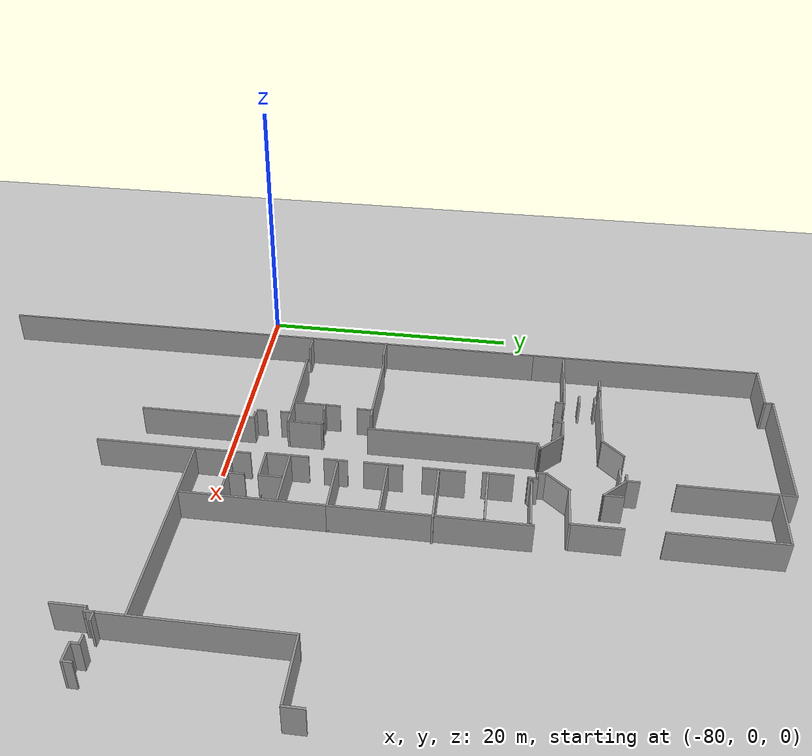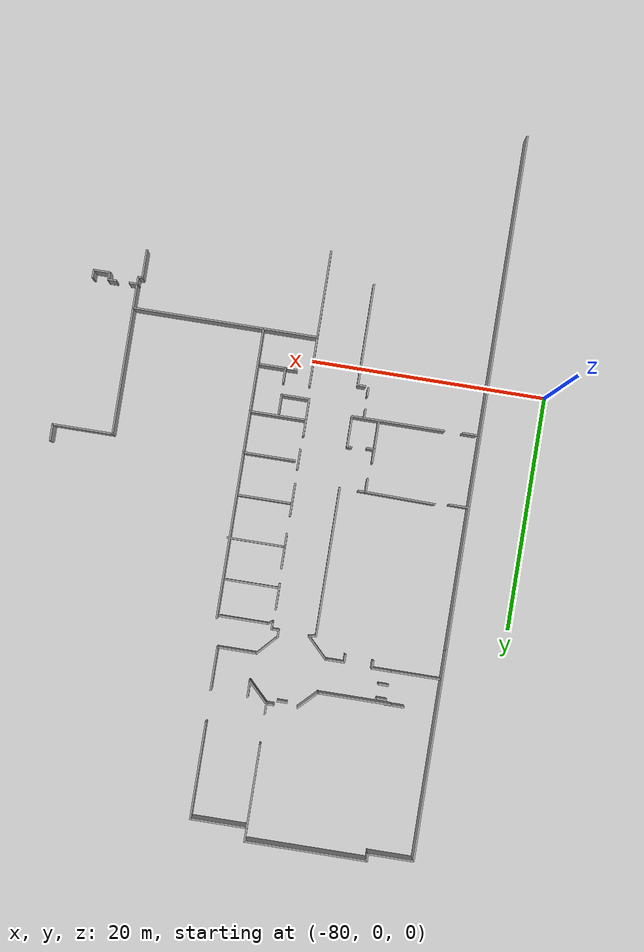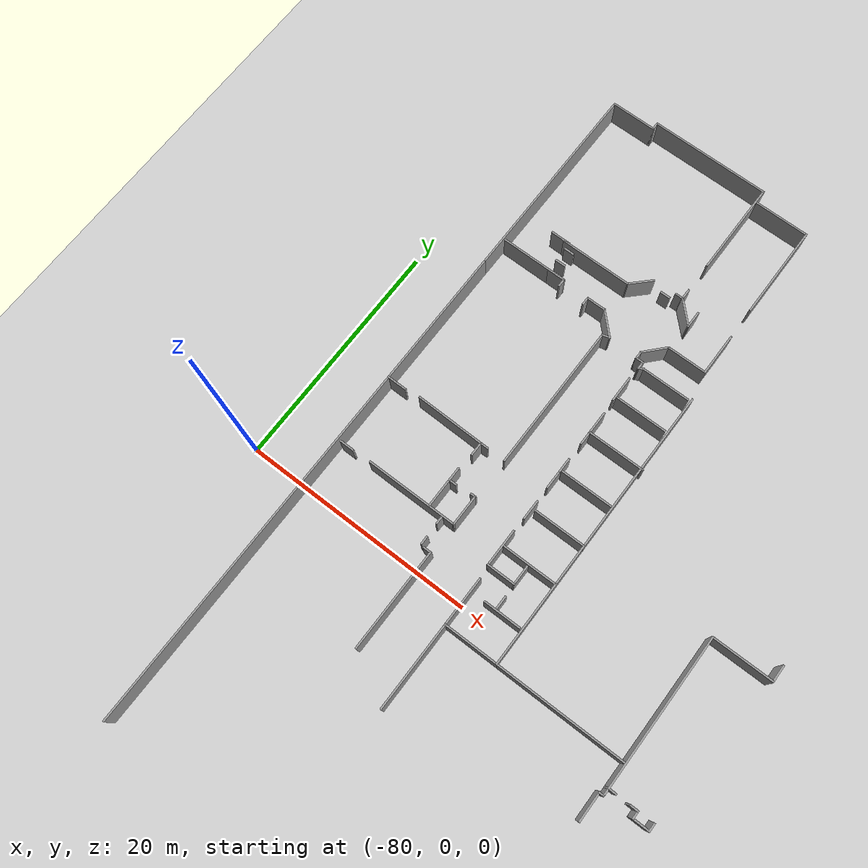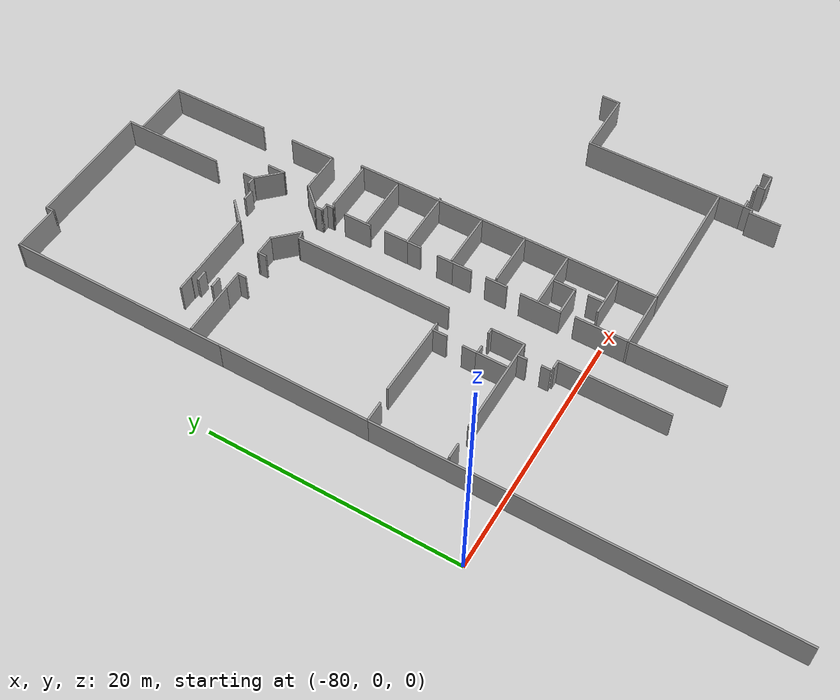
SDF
<sdf version="1.6">
 <world name="default">
  <model name="ground_plane">
   <static>1</static>
   <link name="link">
    <collision name="collision">
     <geometry><plane><normal>0 0 1</normal><size>200 100</size></plane></geometry>
     <surface><friction><ode><mu>100</mu><mu2>50</mu2></ode></friction></surface>
    </collision>
    <visual name="visual">
     <cast_shadows>0</cast_shadows>
     <geometry><plane><normal>0 0 1</normal><size>200 100</size></plane></geometry>
     <material>
      <script><uri>file://media/materials/scripts/gazebo.material</uri><name>Gazebo/Grey</name></script>
     </material>
    </visual>
   </link>
  </model>
  <model name="LuterFloorPlan">
   <pose>-8.27259 7.62647 0 0 -0 0</pose>
   <link name="Door_0">
    <collision name="Door_0_Collision">
     <geometry><box><size>0.9 0.17 2</size></box></geometry>
     <pose>0 0 1 0 -0 0</pose>
    </collision>
    <visual name="Door_0_Visual">
     <pose>0 0 1 0 -0 0</pose>
     <geometry><box><size>0.9 0.17 2</size></box></geometry>
     <material>
      <script><uri>file://media/materials/scripts/gazebo.material</uri><name>Gazebo/Grey</name></script>
     </material>
    </visual>
    <pose>-53.7198 21.2927 0 0 -0 0</pose>
   </link>
   <link name="Door_1">
    <collision name="Door_1_Collision">
     <geometry><box><size>0.9 0.17 2</size></box></geometry>
     <pose>0 0 1 0 -0 0</pose>
    </collision>
    <visual name="Door_1_Visual">
     <pose>0 0 1 0 -0 0</pose>
     <geometry><box><size>0.9 0.17 2</size></box></geometry>
     <material>
      <script><uri>file://media/materials/scripts/gazebo.material</uri><name>Gazebo/Grey</name></script>
     </material>
    </visual>
    <pose>-61.9486 19.7632 0 0 -0 0</pose>
   </link>
   <link name="Door_2">
    <collision name="Door_2_Collision">
     <geometry><box><size>0.9 0.17 2</size></box></geometry>
     <pose>0 0 1 0 -0 0</pose>
    </collision>
    <visual name="Door_2_Visual">
     <pose>0 0 1 0 -0 0</pose>
     <geometry><box><size>0.9 0.17 2</size></box></geometry>
     <material>
      <script><uri>file://media/materials/scripts/gazebo.material</uri><name>Gazebo/Grey</name></script>
     </material>
    </visual>
    <pose>-61.918 18.5396 0 0 -0 0</pose>
   </link>
   <link name="Wall_10">
    <collision name="Wall_10_Collision">
     <geometry><box><size>2.25 0.15 2.5</size></box></geometry>
     <pose>0 0 1.25 0 -0 0</pose>
    </collision>
    <visual name="Wall_10_Visual">
     <pose>0 0 1.25 0 -0 0</pose>
     <geometry><box><size>2.25 0.15 2.5</size></box></geometry>
     <material>
      <script><uri>file://media/materials/scripts/gazebo.material</uri><name>Gazebo/Grey</name></script>
      <ambient>1 1 1 1</ambient>
     </material>
    </visual>
    <pose>-55.8278 20.7995 0 0 0 -2.35619</pose>
   </link>
   <link name="Wall_101">
    <collision name="Wall_101_Collision">
     <geometry><box><size>3.25 0.15 2.5</size></box></geometry>
     <pose>0 0 1.25 0 -0 0</pose>
    </collision>
    <visual name="Wall_101_Visual">
     <pose>0 0 1.25 0 -0 0</pose>
     <geometry><box><size>3.25 0.15 2.5</size></box></geometry>
     <material>
      <script><uri>file://media/materials/scripts/gazebo.material</uri><name>Gazebo/Grey</name></script>
      <ambient>1 1 1 1</ambient>
     </material>
    </visual>
    <pose>-48.9481 -6.49816 0 0 -0 0</pose>
   </link>
   <link name="Wall_103">
    <collision name="Wall_103_Collision">
     <geometry><box><size>1.25 0.15 2.5</size></box></geometry>
     <pose>0 0 1.25 0 -0 0</pose>
    </collision>
    <visual name="Wall_103_Visual">
     <pose>0 0 1.25 0 -0 0</pose>
     <geometry><box><size>1.25 0.15 2.5</size></box></geometry>
     <material>
      <script><uri>file://media/materials/scripts/gazebo.material</uri><name>Gazebo/Grey</name></script>
      <ambient>1 1 1 1</ambient>
     </material>
    </visual>
    <pose>-49.5326 -5.88782 0 0 -0 1.5708</pose>
   </link>
   <link name="Wall_105">
    <collision name="Wall_105_Collision">
     <geometry><box><size>2.5 0.15 2.5</size></box></geometry>
     <pose>0 0 1.25 0 -0 0</pose>
    </collision>
    <visual name="Wall_105_Visual">
     <pose>0 0 1.25 0 -0 0</pose>
     <geometry><box><size>2.5 0.15 2.5</size></box></geometry>
     <material>
      <script><uri>file://media/materials/scripts/gazebo.material</uri><name>Gazebo/Grey</name></script>
      <ambient>1 1 1 1</ambient>
     </material>
    </visual>
    <pose>-50.7511 -4.22783 0 0 -0 0</pose>
   </link>
   <link name="Wall_106">
    <collision name="Wall_106_Collision">
     <geometry><box><size>1.75 0.15 2.5</size></box></geometry>
     <pose>0 0 1.25 0 -0 0</pose>
    </collision>
    <visual name="Wall_106_Visual">
     <pose>0 0 1.25 0 -0 0</pose>
     <geometry><box><size>1.75 0.15 2.5</size></box></geometry>
     <material>
      <script><uri>file://media/materials/scripts/gazebo.material</uri><name>Gazebo/Grey</name></script>
      <ambient>1 1 1 1</ambient>
     </material>
    </visual>
    <pose>-49.5761 -3.42783 0 0 -0 1.5708</pose>
   </link>
   <link name="Wall_109">
    <collision name="Wall_109_Collision">
     <geometry><box><size>32 0.15 2.5</size></box></geometry>
     <pose>0 0 1.25 0 -0 0</pose>
    </collision>
    <visual name="Wall_109_Visual">
     <pose>0 0 1.25 0 -0 0</pose>
     <geometry><box><size>32 0.15 2.5</size></box></geometry>
     <material>
      <script><uri>file://media/materials/scripts/gazebo.material</uri><name>Gazebo/Grey</name></script>
      <ambient>1 1 1 1</ambient>
     </material>
    </visual>
    <pose>-66.6595 -13.2333 0 0 0 -1.5708</pose>
   </link>
   <link name="Wall_11">
    <collision name="Wall_11_Collision">
     <geometry><box><size>6.25 0.15 2.5</size></box></geometry>
     <pose>0 0 1.25 0 -0 0</pose>
    </collision>
    <visual name="Wall_11_Visual">
     <pose>0 0 1.25 0 -0 0</pose>
     <geometry><box><size>6.25 0.15 2.5</size></box></geometry>
     <material>
      <script><uri>file://media/materials/scripts/gazebo.material</uri><name>Gazebo/Grey</name></script>
      <ambient>1 1 1 1</ambient>
     </material>
    </visual>
    <pose>-59.6203 20.057 0 0 -0 3.14159</pose>
   </link>
   <link name="Wall_116">
    <collision name="Wall_116_Collision">
     <geometry><box><size>1.25 0.15 2.5</size></box></geometry>
     <pose>0 0 1.25 0 -0 0</pose>
    </collision>
    <visual name="Wall_116_Visual">
     <pose>0 0 1.25 0 -0 0</pose>
     <geometry><box><size>1.25 0.15 2.5</size></box></geometry>
     <material>
      <script><uri>file://media/materials/scripts/gazebo.material</uri><name>Gazebo/Grey</name></script>
      <ambient>1 1 1 1</ambient>
     </material>
    </visual>
    <pose>-65.7745 -3.44723 0 0 -0 0</pose>
   </link>
   <link name="Wall_118">
    <collision name="Wall_118_Collision">
     <geometry><box><size>8 0.15 2.5</size></box></geometry>
     <pose>0 0 1.25 0 -0 0</pose>
    </collision>
    <visual name="Wall_118_Visual">
     <pose>0 0 1.25 0 -0 0</pose>
     <geometry><box><size>8 0.15 2.5</size></box></geometry>
     <material>
      <script><uri>file://media/materials/scripts/gazebo.material</uri><name>Gazebo/Grey</name></script>
      <ambient>1 1 1 1</ambient>
     </material>
    </visual>
    <pose>-59.6555 -3.37687 0 0 -0 0</pose>
   </link>
   <link name="Wall_119">
    <collision name="Wall_119_Collision">
     <geometry><box><size>2.75 0.15 2.5</size></box></geometry>
     <pose>0 0 1.25 0 -0 0</pose>
    </collision>
    <visual name="Wall_119_Visual">
     <pose>0 0 1.25 0 -0 0</pose>
     <geometry><box><size>2.75 0.15 2.5</size></box></geometry>
     <material>
      <script><uri>file://media/materials/scripts/gazebo.material</uri><name>Gazebo/Grey</name></script>
      <ambient>1 1 1 1</ambient>
     </material>
    </visual>
    <pose>-55.7306 -2.07687 0 0 -0 1.5708</pose>
   </link>
   <link name="Wall_120">
    <collision name="Wall_120_Collision">
     <geometry><box><size>0.5 0.15 2.5</size></box></geometry>
     <pose>0 0 1.25 0 -0 0</pose>
    </collision>
    <visual name="Wall_120_Visual">
     <pose>0 0 1.25 0 -0 0</pose>
     <geometry><box><size>0.5 0.15 2.5</size></box></geometry>
     <material>
      <script><uri>file://media/materials/scripts/gazebo.material</uri><name>Gazebo/Grey</name></script>
      <ambient>1 1 1 1</ambient>
     </material>
    </visual>
    <pose>-55.9055 -0.776871 0 0 -0 3.14159</pose>
   </link>
   <link name="Wall_122">
    <collision name="Wall_122_Collision">
     <geometry><box><size>0.75 0.15 2.5</size></box></geometry>
     <pose>0 0 1.25 0 -0 0</pose>
    </collision>
    <visual name="Wall_122_Visual">
     <pose>0 0 1.25 0 -0 0</pose>
     <geometry><box><size>0.75 0.15 2.5</size></box></geometry>
     <material>
      <script><uri>file://media/materials/scripts/gazebo.material</uri><name>Gazebo/Grey</name></script>
      <ambient>1 1 1 1</ambient>
     </material>
    </visual>
    <pose>-57.7243 -0.914357 0 0 -0 3.14159</pose>
   </link>
   <link name="Wall_123">
    <collision name="Wall_123_Collision">
     <geometry><box><size>2.5 0.15 2.5</size></box></geometry>
     <pose>0 0 1.25 0 -0 0</pose>
    </collision>
    <visual name="Wall_123_Visual">
     <pose>0 0 1.25 0 -0 0</pose>
     <geometry><box><size>2.5 0.15 2.5</size></box></geometry>
     <material>
      <script><uri>file://media/materials/scripts/gazebo.material</uri><name>Gazebo/Grey</name></script>
      <ambient>1 1 1 1</ambient>
     </material>
    </visual>
    <pose>-58.0243 -2.08936 0 0 0 -1.5708</pose>
   </link>
   <link name="Wall_125">
    <collision name="Wall_125_Collision">
     <geometry><box><size>1.25 0.15 2.5</size></box></geometry>
     <pose>0 0 1.25 0 -0 0</pose>
    </collision>
    <visual name="Wall_125_Visual">
     <pose>0 0 1.25 0 -0 0</pose>
     <geometry><box><size>1.25 0.15 2.5</size></box></geometry>
     <material>
      <script><uri>file://media/materials/scripts/gazebo.material</uri><name>Gazebo/Grey</name></script>
      <ambient>1 1 1 1</ambient>
     </material>
    </visual>
    <pose>-58.0243 -0.364357 0 0 -0 1.5708</pose>
   </link>
   <link name="Wall_127">
    <collision name="Wall_127_Collision">
     <geometry><box><size>0.75 0.15 2.5</size></box></geometry>
     <pose>0 0 1.25 0 -0 0</pose>
    </collision>
    <visual name="Wall_127_Visual">
     <pose>0 0 1.25 0 -0 0</pose>
     <geometry><box><size>0.75 0.15 2.5</size></box></geometry>
     <material>
      <script><uri>file://media/materials/scripts/gazebo.material</uri><name>Gazebo/Grey</name></script>
      <ambient>1 1 1 1</ambient>
     </material>
    </visual>
    <pose>-56.7559 -3.78241 0 0 0 -1.5708</pose>
   </link>
   <link name="Wall_129">
    <collision name="Wall_129_Collision">
     <geometry><box><size>0.75 0.15 2.5</size></box></geometry>
     <pose>0 0 1.25 0 -0 0</pose>
    </collision>
    <visual name="Wall_129_Visual">
     <pose>0 0 1.25 0 -0 0</pose>
     <geometry><box><size>0.75 0.15 2.5</size></box></geometry>
     <material>
      <script><uri>file://media/materials/scripts/gazebo.material</uri><name>Gazebo/Grey</name></script>
      <ambient>1 1 1 1</ambient>
     </material>
    </visual>
    <pose>-56.7207 -5.6117 0 0 0 -1.5708</pose>
   </link>
   <link name="Wall_13">
    <collision name="Wall_13_Collision">
     <geometry><box><size>1.75 0.15 2.5</size></box></geometry>
     <pose>0 0 1.25 0 -0 0</pose>
    </collision>
    <visual name="Wall_13_Visual">
     <pose>0 0 1.25 0 -0 0</pose>
     <geometry><box><size>1.75 0.15 2.5</size></box></geometry>
     <material>
      <script><uri>file://media/materials/scripts/gazebo.material</uri><name>Gazebo/Grey</name></script>
      <ambient>1 1 1 1</ambient>
     </material>
    </visual>
    <pose>-61.5273 17.3106 0 0 -0 0</pose>
   </link>
   <link name="Wall_131">
    <collision name="Wall_131_Collision">
     <geometry><box><size>0.75 0.15 2.5</size></box></geometry>
     <pose>0 0 1.25 0 -0 0</pose>
    </collision>
    <visual name="Wall_131_Visual">
     <pose>0 0 1.25 0 -0 0</pose>
     <geometry><box><size>0.75 0.15 2.5</size></box></geometry>
     <material>
      <script><uri>file://media/materials/scripts/gazebo.material</uri><name>Gazebo/Grey</name></script>
      <ambient>1 1 1 1</ambient>
     </material>
    </visual>
    <pose>-56.1041 -6.05046 0 0 -0 0</pose>
   </link>
   <link name="Wall_132">
    <collision name="Wall_132_Collision">
     <geometry><box><size>8.75 0.15 2.5</size></box></geometry>
     <pose>0 0 1.25 0 -0 0</pose>
    </collision>
    <visual name="Wall_132_Visual">
     <pose>0 0 1.25 0 -0 0</pose>
     <geometry><box><size>8.75 0.15 2.5</size></box></geometry>
     <material>
      <script><uri>file://media/materials/scripts/gazebo.material</uri><name>Gazebo/Grey</name></script>
      <ambient>1 1 1 1</ambient>
     </material>
    </visual>
    <pose>-55.8041 -10.3505 0 0 0 -1.5708</pose>
   </link>
   <link name="Wall_14">
    <collision name="Wall_14_Collision">
     <geometry><box><size>0.75 0.15 2.5</size></box></geometry>
     <pose>0 0 1.25 0 -0 0</pose>
    </collision>
    <visual name="Wall_14_Visual">
     <pose>0 0 1.25 0 -0 0</pose>
     <geometry><box><size>0.75 0.15 2.5</size></box></geometry>
     <material>
      <script><uri>file://media/materials/scripts/gazebo.material</uri><name>Gazebo/Grey</name></script>
      <ambient>1 1 1 1</ambient>
     </material>
    </visual>
    <pose>-60.7273 17.0106 0 0 0 -1.5708</pose>
   </link>
   <link name="Wall_147">
    <collision name="Wall_147_Collision">
     <geometry><box><size>7.5 0.15 2.5</size></box></geometry>
     <pose>0 0 1.25 0 -0 0</pose>
    </collision>
    <visual name="Wall_147_Visual">
     <pose>0 0 1.25 0 -0 0</pose>
     <geometry><box><size>7.5 0.15 2.5</size></box></geometry>
     <material>
      <script><uri>file://media/materials/scripts/gazebo.material</uri><name>Gazebo/Grey</name></script>
      <ambient>1 1 1 1</ambient>
     </material>
    </visual>
    <pose>-51.7739 -13.1903 0 0 0 -1.5708</pose>
   </link>
   <link name="Wall_16">
    <collision name="Wall_16_Collision">
     <geometry><box><size>0.75 0.15 2.5</size></box></geometry>
     <pose>0 0 1.25 0 -0 0</pose>
    </collision>
    <visual name="Wall_16_Visual">
     <pose>0 0 1.25 0 -0 0</pose>
     <geometry><box><size>0.75 0.15 2.5</size></box></geometry>
     <material>
      <script><uri>file://media/materials/scripts/gazebo.material</uri><name>Gazebo/Grey</name></script>
      <ambient>1 1 1 1</ambient>
     </material>
    </visual>
    <pose>-58.3402 16.8783 0 0 -0 1.5708</pose>
   </link>
   <link name="Wall_17">
    <collision name="Wall_17_Collision">
     <geometry><box><size>1.75 0.15 2.5</size></box></geometry>
     <pose>0 0 1.25 0 -0 0</pose>
    </collision>
    <visual name="Wall_17_Visual">
     <pose>0 0 1.25 0 -0 0</pose>
     <geometry><box><size>1.75 0.15 2.5</size></box></geometry>
     <material>
      <script><uri>file://media/materials/scripts/gazebo.material</uri><name>Gazebo/Grey</name></script>
      <ambient>1 1 1 1</ambient>
     </material>
    </visual>
    <pose>-57.5402 17.1783 0 0 -0 0</pose>
   </link>
   <link name="Wall_18">
    <collision name="Wall_18_Collision">
     <geometry><box><size>2.5 0.15 2.5</size></box></geometry>
     <pose>0 0 1.25 0 -0 0</pose>
    </collision>
    <visual name="Wall_18_Visual">
     <pose>0 0 1.25 0 -0 0</pose>
     <geometry><box><size>2.5 0.15 2.5</size></box></geometry>
     <material>
      <script><uri>file://media/materials/scripts/gazebo.material</uri><name>Gazebo/Grey</name></script>
      <ambient>1 1 1 1</ambient>
     </material>
    </visual>
    <pose>-55.9093 16.3475 0 0 0 -0.785398</pose>
   </link>
   <link name="Wall_20">
    <collision name="Wall_20_Collision">
     <geometry><box><size>0.75 0.15 2.5</size></box></geometry>
     <pose>0 0 1.25 0 -0 0</pose>
    </collision>
    <visual name="Wall_20_Visual">
     <pose>0 0 1.25 0 -0 0</pose>
     <geometry><box><size>0.75 0.15 2.5</size></box></geometry>
     <material>
      <script><uri>file://media/materials/scripts/gazebo.material</uri><name>Gazebo/Grey</name></script>
      <ambient>1 1 1 1</ambient>
     </material>
    </visual>
    <pose>-55.3683 15.439 0 0 0 -2.87979</pose>
   </link>
   <link name="Wall_21">
    <collision name="Wall_21_Collision">
     <geometry><box><size>12.75 0.15 2.5</size></box></geometry>
     <pose>0 0 1.25 0 -0 0</pose>
    </collision>
    <visual name="Wall_21_Visual">
     <pose>0 0 1.25 0 -0 0</pose>
     <geometry><box><size>12.75 0.15 2.5</size></box></geometry>
     <material>
      <script><uri>file://media/materials/scripts/gazebo.material</uri><name>Gazebo/Grey</name></script>
      <ambient>1 1 1 1</ambient>
     </material>
    </visual>
    <pose>-55.658 9.06132 0 0 0 -1.5708</pose>
   </link>
   <link name="Wall_266">
    <collision name="Wall_266_Collision">
     <geometry><box><size>2.5 0.15 2.5</size></box></geometry>
     <pose>0 0 1.25 0 -0 0</pose>
    </collision>
    <visual name="Wall_266_Visual">
     <pose>0 0 1.25 0 -0 0</pose>
     <geometry><box><size>2.5 0.15 2.5</size></box></geometry>
     <material>
      <script><uri>file://media/materials/scripts/gazebo.material</uri><name>Gazebo/Grey</name></script>
      <ambient>1 1 1 1</ambient>
     </material>
    </visual>
    <pose>-36.3805 -13.3338 0 0 -0 1.5708</pose>
   </link>
   <link name="Wall_267">
    <collision name="Wall_267_Collision">
     <geometry><box><size>0.5 0.15 2.5</size></box></geometry>
     <pose>0 0 1.25 0 -0 0</pose>
    </collision>
    <visual name="Wall_267_Visual">
     <pose>0 0 1.25 0 -0 0</pose>
     <geometry><box><size>0.5 0.15 2.5</size></box></geometry>
     <material>
      <script><uri>file://media/materials/scripts/gazebo.material</uri><name>Gazebo/Grey</name></script>
      <ambient>1 1 1 1</ambient>
     </material>
    </visual>
    <pose>-36.2055 -12.1588 0 0 -0 0</pose>
   </link>
   <link name="Wall_268">
    <collision name="Wall_268_Collision">
     <geometry><box><size>0.75 0.15 2.5</size></box></geometry>
     <pose>0 0 1.25 0 -0 0</pose>
    </collision>
    <visual name="Wall_268_Visual">
     <pose>0 0 1.25 0 -0 0</pose>
     <geometry><box><size>0.75 0.15 2.5</size></box></geometry>
     <material>
      <script><uri>file://media/materials/scripts/gazebo.material</uri><name>Gazebo/Grey</name></script>
      <ambient>1 1 1 1</ambient>
     </material>
    </visual>
    <pose>-36.0305 -11.8588 0 0 -0 1.5708</pose>
   </link>
   <link name="Wall_269">
    <collision name="Wall_269_Collision">
     <geometry><box><size>0.75 0.15 2.5</size></box></geometry>
     <pose>0 0 1.25 0 -0 0</pose>
    </collision>
    <visual name="Wall_269_Visual">
     <pose>0 0 1.25 0 -0 0</pose>
     <geometry><box><size>0.75 0.15 2.5</size></box></geometry>
     <material>
      <script><uri>file://media/materials/scripts/gazebo.material</uri><name>Gazebo/Grey</name></script>
      <ambient>1 1 1 1</ambient>
     </material>
    </visual>
    <pose>-35.7305 -11.5588 0 0 -0 0</pose>
   </link>
   <link name="Wall_273">
    <collision name="Wall_273_Collision">
     <geometry><box><size>13 0.15 2.5</size></box></geometry>
     <pose>0 0 1.25 0 -0 0</pose>
    </collision>
    <visual name="Wall_273_Visual">
     <pose>0 0 1.25 0 -0 0</pose>
     <geometry><box><size>13 0.15 2.5</size></box></geometry>
     <material>
      <script><uri>file://media/materials/scripts/gazebo.material</uri><name>Gazebo/Grey</name></script>
      <ambient>1 1 1 1</ambient>
     </material>
    </visual>
    <pose>-36.0305 -5.13381 0 0 -0 1.5708</pose>
   </link>
   <link name="Wall_274">
    <collision name="Wall_274_Collision">
     <geometry><box><size>5.25 0.15 2.5</size></box></geometry>
     <pose>0 0 1.25 0 -0 0</pose>
    </collision>
    <visual name="Wall_274_Visual">
     <pose>0 0 1.25 0 -0 0</pose>
     <geometry><box><size>5.25 0.15 2.5</size></box></geometry>
     <material>
      <script><uri>file://media/materials/scripts/gazebo.material</uri><name>Gazebo/Grey</name></script>
      <ambient>1 1 1 1</ambient>
     </material>
    </visual>
    <pose>-33.4805 1.29119 0 0 -0 0</pose>
   </link>
   <link name="Wall_275">
    <collision name="Wall_275_Collision">
     <geometry><box><size>1.5 0.15 2.5</size></box></geometry>
     <pose>0 0 1.25 0 -0 0</pose>
    </collision>
    <visual name="Wall_275_Visual">
     <pose>0 0 1.25 0 -0 0</pose>
     <geometry><box><size>1.5 0.15 2.5</size></box></geometry>
     <material>
      <script><uri>file://media/materials/scripts/gazebo.material</uri><name>Gazebo/Grey</name></script>
      <ambient>1 1 1 1</ambient>
     </material>
    </visual>
    <pose>-30.9305 1.96619 0 0 -0 1.5708</pose>
   </link>
   <link name="Wall_282">
    <collision name="Wall_282_Collision">
     <geometry><box><size>0.75 0.15 2.5</size></box></geometry>
     <pose>0 0 1.25 0 -0 0</pose>
    </collision>
    <visual name="Wall_282_Visual">
     <pose>0 0 1.25 0 -0 0</pose>
     <geometry><box><size>0.75 0.15 2.5</size></box></geometry>
     <material>
      <script><uri>file://media/materials/scripts/gazebo.material</uri><name>Gazebo/Grey</name></script>
      <ambient>1 1 1 1</ambient>
     </material>
    </visual>
    <pose>-33.8866 -11.5558 0 0 -0 0</pose>
   </link>
   <link name="Wall_283">
    <collision name="Wall_283_Collision">
     <geometry><box><size>0.75 0.15 2.5</size></box></geometry>
     <pose>0 0 1.25 0 -0 0</pose>
    </collision>
    <visual name="Wall_283_Visual">
     <pose>0 0 1.25 0 -0 0</pose>
     <geometry><box><size>0.75 0.15 2.5</size></box></geometry>
     <material>
      <script><uri>file://media/materials/scripts/gazebo.material</uri><name>Gazebo/Grey</name></script>
      <ambient>1 1 1 1</ambient>
     </material>
    </visual>
    <pose>-33.5866 -11.8558 0 0 0 -1.5708</pose>
   </link>
   <link name="Wall_284">
    <collision name="Wall_284_Collision">
     <geometry><box><size>1.5 0.15 2.5</size></box></geometry>
     <pose>0 0 1.25 0 -0 0</pose>
    </collision>
    <visual name="Wall_284_Visual">
     <pose>0 0 1.25 0 -0 0</pose>
     <geometry><box><size>1.5 0.15 2.5</size></box></geometry>
     <material>
      <script><uri>file://media/materials/scripts/gazebo.material</uri><name>Gazebo/Grey</name></script>
      <ambient>1 1 1 1</ambient>
     </material>
    </visual>
    <pose>-32.9116 -12.1558 0 0 -0 0</pose>
   </link>
   <link name="Wall_285">
    <collision name="Wall_285_Collision">
     <geometry><box><size>0.75 0.15 2.5</size></box></geometry>
     <pose>0 0 1.25 0 -0 0</pose>
    </collision>
    <visual name="Wall_285_Visual">
     <pose>0 0 1.25 0 -0 0</pose>
     <geometry><box><size>0.75 0.15 2.5</size></box></geometry>
     <material>
      <script><uri>file://media/materials/scripts/gazebo.material</uri><name>Gazebo/Grey</name></script>
      <ambient>1 1 1 1</ambient>
     </material>
    </visual>
    <pose>-32.2366 -11.8558 0 0 -0 1.5708</pose>
   </link>
   <link name="Wall_29">
    <collision name="Wall_29_Collision">
     <geometry><box><size>0.75 0.15 2.5</size></box></geometry>
     <pose>0 0 1.25 0 -0 0</pose>
    </collision>
    <visual name="Wall_29_Visual">
     <pose>0 0 1.25 0 -0 0</pose>
     <geometry><box><size>0.75 0.15 2.5</size></box></geometry>
     <material>
      <script><uri>file://media/materials/scripts/gazebo.material</uri><name>Gazebo/Grey</name></script>
      <ambient>1 1 1 1</ambient>
     </material>
    </visual>
    <pose>-57.5683 2.755 0 0 -0 3.14159</pose>
   </link>
   <link name="Wall_30">
    <collision name="Wall_30_Collision">
     <geometry><box><size>1.25 0.15 2.5</size></box></geometry>
     <pose>0 0 1.25 0 -0 0</pose>
    </collision>
    <visual name="Wall_30_Visual">
     <pose>0 0 1.25 0 -0 0</pose>
     <geometry><box><size>1.25 0.15 2.5</size></box></geometry>
     <material>
      <script><uri>file://media/materials/scripts/gazebo.material</uri><name>Gazebo/Grey</name></script>
      <ambient>1 1 1 1</ambient>
     </material>
    </visual>
    <pose>-57.8683 2.205 0 0 0 -1.5708</pose>
   </link>
   <link name="Wall_32">
    <collision name="Wall_32_Collision">
     <geometry><box><size>18 0.15 2.5</size></box></geometry>
     <pose>0 0 1.25 0 -0 0</pose>
    </collision>
    <visual name="Wall_32_Visual">
     <pose>0 0 1.25 0 -0 0</pose>
     <geometry><box><size>18 0.15 2.5</size></box></geometry>
     <material>
      <script><uri>file://media/materials/scripts/gazebo.material</uri><name>Gazebo/Grey</name></script>
      <ambient>1 1 1 1</ambient>
     </material>
    </visual>
    <pose>-66.6595 23.7167 0 0 0 -1.5708</pose>
   </link>
   <link name="Wall_34">
    <collision name="Wall_34_Collision">
     <geometry><box><size>1.75 0.15 2.5</size></box></geometry>
     <pose>0 0 1.25 0 -0 0</pose>
    </collision>
    <visual name="Wall_34_Visual">
     <pose>0 0 1.25 0 -0 0</pose>
     <geometry><box><size>1.75 0.15 2.5</size></box></geometry>
     <material>
      <script><uri>file://media/materials/scripts/gazebo.material</uri><name>Gazebo/Grey</name></script>
      <ambient>1 1 1 1</ambient>
     </material>
    </visual>
    <pose>-63.0452 20.0997 0 0 -0 0</pose>
   </link>
   <link name="Wall_36">
    <collision name="Wall_36_Collision">
     <geometry><box><size>4.25 0.15 2.5</size></box></geometry>
     <pose>0 0 1.25 0 -0 0</pose>
    </collision>
    <visual name="Wall_36_Visual">
     <pose>0 0 1.25 0 -0 0</pose>
     <geometry><box><size>4.25 0.15 2.5</size></box></geometry>
     <material>
      <script><uri>file://media/materials/scripts/gazebo.material</uri><name>Gazebo/Grey</name></script>
      <ambient>1 1 1 1</ambient>
     </material>
    </visual>
    <pose>-64.3773 17.3106 0 0 -0 3.14159</pose>
   </link>
   <link name="Wall_38">
    <collision name="Wall_38_Collision">
     <geometry><box><size>4 0.15 2.5</size></box></geometry>
     <pose>0 0 1.25 0 -0 0</pose>
    </collision>
    <visual name="Wall_38_Visual">
     <pose>0 0 1.25 0 -0 0</pose>
     <geometry><box><size>4 0.15 2.5</size></box></geometry>
     <material>
      <script><uri>file://media/materials/scripts/gazebo.material</uri><name>Gazebo/Grey</name></script>
      <ambient>1 1 1 1</ambient>
     </material>
    </visual>
    <pose>-64.7345 32.6417 0 0 -0 0</pose>
   </link>
   <link name="Wall_39">
    <collision name="Wall_39_Collision">
     <geometry><box><size>0.75 0.15 2.5</size></box></geometry>
     <pose>0 0 1.25 0 -0 0</pose>
    </collision>
    <visual name="Wall_39_Visual">
     <pose>0 0 1.25 0 -0 0</pose>
     <geometry><box><size>0.75 0.15 2.5</size></box></geometry>
     <material>
      <script><uri>file://media/materials/scripts/gazebo.material</uri><name>Gazebo/Grey</name></script>
      <ambient>1 1 1 1</ambient>
     </material>
    </visual>
    <pose>-62.8095 32.9417 0 0 -0 1.5708</pose>
   </link>
   <link name="Wall_40">
    <collision name="Wall_40_Collision">
     <geometry><box><size>10.5 0.15 2.5</size></box></geometry>
     <pose>0 0 1.25 0 -0 0</pose>
    </collision>
    <visual name="Wall_40_Visual">
     <pose>0 0 1.25 0 -0 0</pose>
     <geometry><box><size>10.5 0.15 2.5</size></box></geometry>
     <material>
      <script><uri>file://media/materials/scripts/gazebo.material</uri><name>Gazebo/Grey</name></script>
      <ambient>1 1 1 1</ambient>
     </material>
    </visual>
    <pose>-57.6345 33.2417 0 0 -0 0</pose>
   </link>
   <link name="Wall_41">
    <collision name="Wall_41_Collision">
     <geometry><box><size>8.25 0.15 2.5</size></box></geometry>
     <pose>0 0 1.25 0 -0 0</pose>
    </collision>
    <visual name="Wall_41_Visual">
     <pose>0 0 1.25 0 -0 0</pose>
     <geometry><box><size>8.25 0.15 2.5</size></box></geometry>
     <material>
      <script><uri>file://media/materials/scripts/gazebo.material</uri><name>Gazebo/Grey</name></script>
      <ambient>1 1 1 1</ambient>
     </material>
    </visual>
    <pose>-52.4595 29.1917 0 0 0 -1.5708</pose>
   </link>
   <link name="Wall_43">
    <collision name="Wall_43_Collision">
     <geometry><box><size>1 0.15 2.5</size></box></geometry>
     <pose>0 0 1.25 0 -0 0</pose>
    </collision>
    <visual name="Wall_43_Visual">
     <pose>0 0 1.25 0 -0 0</pose>
     <geometry><box><size>1 0.15 2.5</size></box></geometry>
     <material>
      <script><uri>file://media/materials/scripts/gazebo.material</uri><name>Gazebo/Grey</name></script>
      <ambient>1 1 1 1</ambient>
     </material>
    </visual>
    <pose>-52.435 22.0607 0 0 0 -1.5708</pose>
   </link>
   <link name="Wall_44">
    <collision name="Wall_44_Collision">
     <geometry><box><size>0.75 0.15 2.5</size></box></geometry>
     <pose>0 0 1.25 0 -0 0</pose>
    </collision>
    <visual name="Wall_44_Visual">
     <pose>0 0 1.25 0 -0 0</pose>
     <geometry><box><size>0.75 0.15 2.5</size></box></geometry>
     <material>
      <script><uri>file://media/materials/scripts/gazebo.material</uri><name>Gazebo/Grey</name></script>
      <ambient>1 1 1 1</ambient>
     </material>
    </visual>
    <pose>-52.735 21.6357 0 0 -0 3.14159</pose>
   </link>
   <link name="Wall_46">
    <collision name="Wall_46_Collision">
     <geometry><box><size>4.75 0.15 2.5</size></box></geometry>
     <pose>0 0 1.25 0 -0 0</pose>
    </collision>
    <visual name="Wall_46_Visual">
     <pose>0 0 1.25 0 -0 0</pose>
     <geometry><box><size>4.75 0.15 2.5</size></box></geometry>
     <material>
      <script><uri>file://media/materials/scripts/gazebo.material</uri><name>Gazebo/Grey</name></script>
      <ambient>1 1 1 1</ambient>
     </material>
    </visual>
    <pose>-49.9791 32.1083 0 0 -0 0</pose>
   </link>
   <link name="Wall_47">
    <collision name="Wall_47_Collision">
     <geometry><box><size>8.25 0.15 2.5</size></box></geometry>
     <pose>0 0 1.25 0 -0 0</pose>
    </collision>
    <visual name="Wall_47_Visual">
     <pose>0 0 1.25 0 -0 0</pose>
     <geometry><box><size>8.25 0.15 2.5</size></box></geometry>
     <material>
      <script><uri>file://media/materials/scripts/gazebo.material</uri><name>Gazebo/Grey</name></script>
      <ambient>1 1 1 1</ambient>
     </material>
    </visual>
    <pose>-47.6791 28.0583 0 0 0 -1.5708</pose>
   </link>
   <link name="Wall_49">
    <collision name="Wall_49_Collision">
     <geometry><box><size>2.5 0.15 2.5</size></box></geometry>
     <pose>0 0 1.25 0 -0 0</pose>
    </collision>
    <visual name="Wall_49_Visual">
     <pose>0 0 1.25 0 -0 0</pose>
     <geometry><box><size>2.5 0.15 2.5</size></box></geometry>
     <material>
      <script><uri>file://media/materials/scripts/gazebo.material</uri><name>Gazebo/Grey</name></script>
      <ambient>1 1 1 1</ambient>
     </material>
    </visual>
    <pose>-51.6042 20.8048 0 0 0 -0.785398</pose>
   </link>
   <link name="Wall_50">
    <collision name="Wall_50_Collision">
     <geometry><box><size>1.5 0.15 2.5</size></box></geometry>
     <pose>0 0 1.25 0 -0 0</pose>
    </collision>
    <visual name="Wall_50_Visual">
     <pose>0 0 1.25 0 -0 0</pose>
     <geometry><box><size>1.5 0.15 2.5</size></box></geometry>
     <material>
      <script><uri>file://media/materials/scripts/gazebo.material</uri><name>Gazebo/Grey</name></script>
      <ambient>1 1 1 1</ambient>
     </material>
    </visual>
    <pose>-50.7733 20.649 0 0 -0 1.5708</pose>
   </link>
   <link name="Wall_52">
    <collision name="Wall_52_Collision">
     <geometry><box><size>3.75 0.15 2.5</size></box></geometry>
     <pose>0 0 1.25 0 -0 0</pose>
    </collision>
    <visual name="Wall_52_Visual">
     <pose>0 0 1.25 0 -0 0</pose>
     <geometry><box><size>3.75 0.15 2.5</size></box></geometry>
     <material>
      <script><uri>file://media/materials/scripts/gazebo.material</uri><name>Gazebo/Grey</name></script>
      <ambient>1 1 1 1</ambient>
     </material>
    </visual>
    <pose>-47.6355 19.4029 0 0 0 -1.5708</pose>
   </link>
   <link name="Wall_53">
    <collision name="Wall_53_Collision">
     <geometry><box><size>3.5 0.15 2.5</size></box></geometry>
     <pose>0 0 1.25 0 -0 0</pose>
    </collision>
    <visual name="Wall_53_Visual">
     <pose>0 0 1.25 0 -0 0</pose>
     <geometry><box><size>3.5 0.15 2.5</size></box></geometry>
     <material>
      <script><uri>file://media/materials/scripts/gazebo.material</uri><name>Gazebo/Grey</name></script>
      <ambient>1 1 1 1</ambient>
     </material>
    </visual>
    <pose>-49.3105 17.6029 0 0 -0 3.14159</pose>
   </link>
   <link name="Wall_57">
    <collision name="Wall_57_Collision">
     <geometry><box><size>2.34245 0.15 2.5</size></box></geometry>
     <pose>0 0 1.25 0 -0 0</pose>
    </collision>
    <visual name="Wall_57_Visual">
     <pose>0 0 1.25 0 -0 0</pose>
     <geometry><box><size>2.34245 0.15 2.5</size></box></geometry>
     <material>
      <script><uri>file://media/materials/scripts/gazebo.material</uri><name>Gazebo/Grey</name></script>
      <ambient>1 1 1 1</ambient>
     </material>
    </visual>
    <pose>-51.7273 16.7959 0 0 -0 0.827455</pose>
   </link>
   <link name="Wall_581">
    <collision name="Wall_581_Collision">
     <geometry><box><size>14.25 0.15 2.5</size></box></geometry>
     <pose>0 0 1.25 0 -0 0</pose>
    </collision>
    <visual name="Wall_581_Visual">
     <pose>0 0 1.25 0 -0 0</pose>
     <geometry><box><size>14.25 0.15 2.5</size></box></geometry>
     <material>
      <script><uri>file://media/materials/scripts/gazebo.material</uri><name>Gazebo/Grey</name></script>
      <ambient>1 1 1 1</ambient>
     </material>
    </visual>
    <pose>-47.1739 8.13466 0 0 -0 1.5708</pose>
   </link>
   <link name="Wall_583">
    <collision name="Wall_583_Collision">
     <geometry><box><size>5 0.15 2.5</size></box></geometry>
     <pose>0 0 1.25 0 -0 0</pose>
    </collision>
    <visual name="Wall_583_Visual">
     <pose>0 0 1.25 0 -0 0</pose>
     <geometry><box><size>5 0.15 2.5</size></box></geometry>
     <material>
      <script><uri>file://media/materials/scripts/gazebo.material</uri><name>Gazebo/Grey</name></script>
      <ambient>1 1 1 1</ambient>
     </material>
    </visual>
    <pose>-49.4408 8.38634 0 0 -0 0</pose>
   </link>
   <link name="Wall_585">
    <collision name="Wall_585_Collision">
     <geometry><box><size>4.5 0.15 2.5</size></box></geometry>
     <pose>0 0 1.25 0 -0 0</pose>
    </collision>
    <visual name="Wall_585_Visual">
     <pose>0 0 1.25 0 -0 0</pose>
     <geometry><box><size>4.5 0.15 2.5</size></box></geometry>
     <material>
      <script><uri>file://media/materials/scripts/gazebo.material</uri><name>Gazebo/Grey</name></script>
      <ambient>1 1 1 1</ambient>
     </material>
    </visual>
    <pose>-49.5221 4.69633 0 0 -0 0</pose>
   </link>
   <link name="Wall_587">
    <collision name="Wall_587_Collision">
     <geometry><box><size>11.25 0.15 2.5</size></box></geometry>
     <pose>0 0 1.25 0 -0 0</pose>
    </collision>
    <visual name="Wall_587_Visual">
     <pose>0 0 1.25 0 -0 0</pose>
     <geometry><box><size>11.25 0.15 2.5</size></box></geometry>
     <material>
      <script><uri>file://media/materials/scripts/gazebo.material</uri><name>Gazebo/Grey</name></script>
      <ambient>1 1 1 1</ambient>
     </material>
    </visual>
    <pose>-41.6239 -9.51534 0 0 -0 0</pose>
   </link>
   <link name="Wall_59">
    <collision name="Wall_59_Collision">
     <geometry><box><size>0.75 0.15 2.5</size></box></geometry>
     <pose>0 0 1.25 0 -0 0</pose>
    </collision>
    <visual name="Wall_59_Visual">
     <pose>0 0 1.25 0 -0 0</pose>
     <geometry><box><size>0.75 0.15 2.5</size></box></geometry>
     <material>
      <script><uri>file://media/materials/scripts/gazebo.material</uri><name>Gazebo/Grey</name></script>
      <ambient>1 1 1 1</ambient>
     </material>
    </visual>
    <pose>-52.4692 15.6888 0 0 0 -1.5708</pose>
   </link>
   <link name="Wall_60">
    <collision name="Wall_60_Collision">
     <geometry><box><size>0.75 0.15 2.5</size></box></geometry>
     <pose>0 0 1.25 0 -0 0</pose>
    </collision>
    <visual name="Wall_60_Visual">
     <pose>0 0 1.25 0 -0 0</pose>
     <geometry><box><size>0.75 0.15 2.5</size></box></geometry>
     <material>
      <script><uri>file://media/materials/scripts/gazebo.material</uri><name>Gazebo/Grey</name></script>
      <ambient>1 1 1 1</ambient>
     </material>
    </visual>
    <pose>-52.1692 15.3888 0 0 -0 0</pose>
   </link>
   <link name="Wall_61">
    <collision name="Wall_61_Collision">
     <geometry><box><size>0.75 0.15 2.5</size></box></geometry>
     <pose>0 0 1.25 0 -0 0</pose>
    </collision>
    <visual name="Wall_61_Visual">
     <pose>0 0 1.25 0 -0 0</pose>
     <geometry><box><size>0.75 0.15 2.5</size></box></geometry>
     <material>
      <script><uri>file://media/materials/scripts/gazebo.material</uri><name>Gazebo/Grey</name></script>
      <ambient>1 1 1 1</ambient>
     </material>
    </visual>
    <pose>-51.8692 15.0888 0 0 0 -1.5708</pose>
   </link>
   <link name="Wall_63">
    <collision name="Wall_63_Collision">
     <geometry><box><size>2.25 0.15 2.5</size></box></geometry>
     <pose>0 0 1.25 0 -0 0</pose>
    </collision>
    <visual name="Wall_63_Visual">
     <pose>0 0 1.25 0 -0 0</pose>
     <geometry><box><size>2.25 0.15 2.5</size></box></geometry>
     <material>
      <script><uri>file://media/materials/scripts/gazebo.material</uri><name>Gazebo/Grey</name></script>
      <ambient>1 1 1 1</ambient>
     </material>
    </visual>
    <pose>-51.9462 12.6258 0 0 0 -1.5708</pose>
   </link>
   <link name="Wall_65">
    <collision name="Wall_65_Collision">
     <geometry><box><size>4.5 0.15 2.5</size></box></geometry>
     <pose>0 0 1.25 0 -0 0</pose>
    </collision>
    <visual name="Wall_65_Visual">
     <pose>0 0 1.25 0 -0 0</pose>
     <geometry><box><size>4.5 0.15 2.5</size></box></geometry>
     <material>
      <script><uri>file://media/materials/scripts/gazebo.material</uri><name>Gazebo/Grey</name></script>
      <ambient>1 1 1 1</ambient>
     </material>
    </visual>
    <pose>-49.6103 11.8856 0 0 -0 0</pose>
   </link>
   <link name="Wall_67">
    <collision name="Wall_67_Collision">
     <geometry><box><size>4.25 0.15 2.5</size></box></geometry>
     <pose>0 0 1.25 0 -0 0</pose>
    </collision>
    <visual name="Wall_67_Visual">
     <pose>0 0 1.25 0 -0 0</pose>
     <geometry><box><size>4.25 0.15 2.5</size></box></geometry>
     <material>
      <script><uri>file://media/materials/scripts/gazebo.material</uri><name>Gazebo/Grey</name></script>
      <ambient>1 1 1 1</ambient>
     </material>
    </visual>
    <pose>-49.4853 14.9856 0 0 -0 3.14159</pose>
   </link>
   <link name="Wall_68">
    <collision name="Wall_68_Collision">
     <geometry><box><size>0.537564 0.15 2.5</size></box></geometry>
     <pose>0 0 1.25 0 -0 0</pose>
    </collision>
    <visual name="Wall_68_Visual">
     <pose>0 0 1.25 0 -0 0</pose>
     <geometry><box><size>0.537564 0.15 2.5</size></box></geometry>
     <material>
      <script><uri>file://media/materials/scripts/gazebo.material</uri><name>Gazebo/Grey</name></script>
      <ambient>1 1 1 1</ambient>
     </material>
    </visual>
    <pose>-51.7023 14.8872 0 0 0 -2.60888</pose>
   </link>
   <link name="Wall_70">
    <collision name="Wall_70_Collision">
     <geometry><box><size>12.25 0.15 2.5</size></box></geometry>
     <pose>0 0 1.25 0 -0 0</pose>
    </collision>
    <visual name="Wall_70_Visual">
     <pose>0 0 1.25 0 -0 0</pose>
     <geometry><box><size>12.25 0.15 2.5</size></box></geometry>
     <material>
      <script><uri>file://media/materials/scripts/gazebo.material</uri><name>Gazebo/Grey</name></script>
      <ambient>1 1 1 1</ambient>
     </material>
    </visual>
    <pose>-66.6595 8.74165 0 0 0 -1.5708</pose>
   </link>
   <link name="Wall_71">
    <collision name="Wall_71_Collision">
     <geometry><box><size>1.75 0.15 2.5</size></box></geometry>
     <pose>0 0 1.25 0 -0 0</pose>
    </collision>
    <visual name="Wall_71_Visual">
     <pose>0 0 1.25 0 -0 0</pose>
     <geometry><box><size>1.75 0.15 2.5</size></box></geometry>
     <material>
      <script><uri>file://media/materials/scripts/gazebo.material</uri><name>Gazebo/Grey</name></script>
      <ambient>1 1 1 1</ambient>
     </material>
    </visual>
    <pose>-65.8595 2.69165 0 0 -0 0</pose>
   </link>
   <link name="Wall_73">
    <collision name="Wall_73_Collision">
     <geometry><box><size>6.03547 0.15 2.5</size></box></geometry>
     <pose>0 0 1.25 0 -0 0</pose>
    </collision>
    <visual name="Wall_73_Visual">
     <pose>0 0 1.25 0 -0 0</pose>
     <geometry><box><size>6.03547 0.15 2.5</size></box></geometry>
     <material>
      <script><uri>file://media/materials/scripts/gazebo.material</uri><name>Gazebo/Grey</name></script>
      <ambient>1 1 1 1</ambient>
     </material>
    </visual>
    <pose>-60.8106 2.80483 0 0 0 -0.016933</pose>
   </link>
   <link name="Wall_75">
    <collision name="Wall_75_Collision">
     <geometry><box><size>2 0.15 2.5</size></box></geometry>
     <pose>0 0 1.25 0 -0 0</pose>
    </collision>
    <visual name="Wall_75_Visual">
     <pose>0 0 1.25 0 -0 0</pose>
     <geometry><box><size>2 0.15 2.5</size></box></geometry>
     <material>
      <script><uri>file://media/materials/scripts/gazebo.material</uri><name>Gazebo/Grey</name></script>
      <ambient>1 1 1 1</ambient>
     </material>
    </visual>
    <pose>-51.8658 9.31134 0 0 0 -1.5708</pose>
   </link>
   <link name="Wall_79">
    <collision name="Wall_79_Collision">
     <geometry><box><size>1.25 0.15 2.5</size></box></geometry>
     <pose>0 0 1.25 0 -0 0</pose>
    </collision>
    <visual name="Wall_79_Visual">
     <pose>0 0 1.25 0 -0 0</pose>
     <geometry><box><size>1.25 0.15 2.5</size></box></geometry>
     <material>
      <script><uri>file://media/materials/scripts/gazebo.material</uri><name>Gazebo/Grey</name></script>
      <ambient>1 1 1 1</ambient>
     </material>
    </visual>
    <pose>-51.8658 7.83634 0 0 0 -1.5708</pose>
   </link>
   <link name="Wall_81">
    <collision name="Wall_81_Collision">
     <geometry><box><size>1.31957 0.15 2.5</size></box></geometry>
     <pose>0 0 1.25 0 -0 0</pose>
    </collision>
    <visual name="Wall_81_Visual">
     <pose>0 0 1.25 0 -0 0</pose>
     <geometry><box><size>1.31957 0.15 2.5</size></box></geometry>
     <material>
      <script><uri>file://media/materials/scripts/gazebo.material</uri><name>Gazebo/Grey</name></script>
      <ambient>1 1 1 1</ambient>
     </material>
    </visual>
    <pose>-51.8859 5.14611 0 0 0 -1.5708</pose>
   </link>
   <link name="Wall_85">
    <collision name="Wall_85_Collision">
     <geometry><box><size>1.68043 0.15 2.5</size></box></geometry>
     <pose>0 0 1.25 0 -0 0</pose>
    </collision>
    <visual name="Wall_85_Visual">
     <pose>0 0 1.25 0 -0 0</pose>
     <geometry><box><size>1.68043 0.15 2.5</size></box></geometry>
     <material>
      <script><uri>file://media/materials/scripts/gazebo.material</uri><name>Gazebo/Grey</name></script>
      <ambient>1 1 1 1</ambient>
     </material>
    </visual>
    <pose>-51.8859 3.79611 0 0 0 -1.5708</pose>
   </link>
   <link name="Wall_88">
    <collision name="Wall_88_Collision">
     <geometry><box><size>1.75 0.15 2.5</size></box></geometry>
     <pose>0 0 1.25 0 -0 0</pose>
    </collision>
    <visual name="Wall_88_Visual">
     <pose>0 0 1.25 0 -0 0</pose>
     <geometry><box><size>1.75 0.15 2.5</size></box></geometry>
     <material>
      <script><uri>file://media/materials/scripts/gazebo.material</uri><name>Gazebo/Grey</name></script>
      <ambient>1 1 1 1</ambient>
     </material>
    </visual>
    <pose>-51.8658 0.919209 0 0 -0 1.5708</pose>
   </link>
   <link name="Wall_90">
    <collision name="Wall_90_Collision">
     <geometry><box><size>4.5 0.15 2.5</size></box></geometry>
     <pose>0 0 1.25 0 -0 0</pose>
    </collision>
    <visual name="Wall_90_Visual">
     <pose>0 0 1.25 0 -0 0</pose>
     <geometry><box><size>4.5 0.15 2.5</size></box></geometry>
     <material>
      <script><uri>file://media/materials/scripts/gazebo.material</uri><name>Gazebo/Grey</name></script>
      <ambient>1 1 1 1</ambient>
     </material>
    </visual>
    <pose>-49.3489 1.08466 0 0 -0 0</pose>
   </link>
   <link name="Wall_93">
    <collision name="Wall_93_Collision">
     <geometry><box><size>10.75 0.15 2.5</size></box></geometry>
     <pose>0 0 1.25 0 -0 0</pose>
    </collision>
    <visual name="Wall_93_Visual">
     <pose>0 0 1.25 0 -0 0</pose>
     <geometry><box><size>10.75 0.15 2.5</size></box></geometry>
     <material>
      <script><uri>file://media/materials/scripts/gazebo.material</uri><name>Gazebo/Grey</name></script>
      <ambient>1 1 1 1</ambient>
     </material>
    </visual>
    <pose>-47.1739 -4.21534 0 0 0 -1.5708</pose>
   </link>
   <link name="Wall_94">
    <collision name="Wall_94_Collision">
     <geometry><box><size>4.75 0.15 2.5</size></box></geometry>
     <pose>0 0 1.25 0 -0 0</pose>
    </collision>
    <visual name="Wall_94_Visual">
     <pose>0 0 1.25 0 -0 0</pose>
     <geometry><box><size>4.75 0.15 2.5</size></box></geometry>
     <material>
      <script><uri>file://media/materials/scripts/gazebo.material</uri><name>Gazebo/Grey</name></script>
      <ambient>1 1 1 1</ambient>
     </material>
    </visual>
    <pose>-49.4739 -9.51534 0 0 -0 3.14159</pose>
   </link>
   <link name="Wall_95">
    <collision name="Wall_95_Collision">
     <geometry><box><size>4.25 0.15 2.5</size></box></geometry>
     <pose>0 0 1.25 0 -0 0</pose>
    </collision>
    <visual name="Wall_95_Visual">
     <pose>0 0 1.25 0 -0 0</pose>
     <geometry><box><size>4.25 0.15 2.5</size></box></geometry>
     <material>
      <script><uri>file://media/materials/scripts/gazebo.material</uri><name>Gazebo/Grey</name></script>
      <ambient>1 1 1 1</ambient>
     </material>
    </visual>
    <pose>-51.7739 -7.46534 0 0 -0 1.5708</pose>
   </link>
   <link name="Wall_97">
    <collision name="Wall_97_Collision">
     <geometry><box><size>3.25 0.15 2.5</size></box></geometry>
     <pose>0 0 1.25 0 -0 0</pose>
    </collision>
    <visual name="Wall_97_Visual">
     <pose>0 0 1.25 0 -0 0</pose>
     <geometry><box><size>3.25 0.15 2.5</size></box></geometry>
     <material>
      <script><uri>file://media/materials/scripts/gazebo.material</uri><name>Gazebo/Grey</name></script>
      <ambient>1 1 1 1</ambient>
     </material>
    </visual>
    <pose>-51.9261 -2.67783 0 0 0 -1.5708</pose>
   </link>
   <link name="Wall_99">
    <collision name="Wall_99_Collision">
     <geometry><box><size>4.75 0.15 2.5</size></box></geometry>
     <pose>0 0 1.25 0 -0 0</pose>
    </collision>
    <visual name="Wall_99_Visual">
     <pose>0 0 1.25 0 -0 0</pose>
     <geometry><box><size>4.75 0.15 2.5</size></box></geometry>
     <material>
      <script><uri>file://media/materials/scripts/gazebo.material</uri><name>Gazebo/Grey</name></script>
      <ambient>1 1 1 1</ambient>
     </material>
    </visual>
    <pose>-49.5256 -2.43521 0 0 -0 0</pose>
   </link>
   <static>1</static>
  </model>
 </world>
</sdf>
